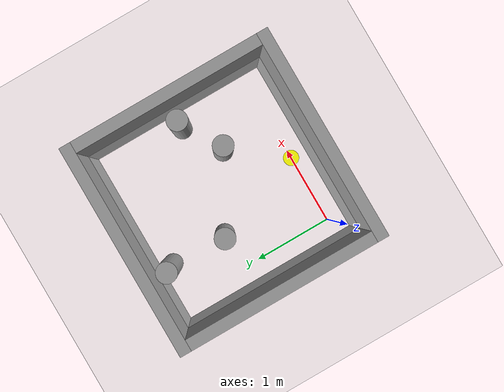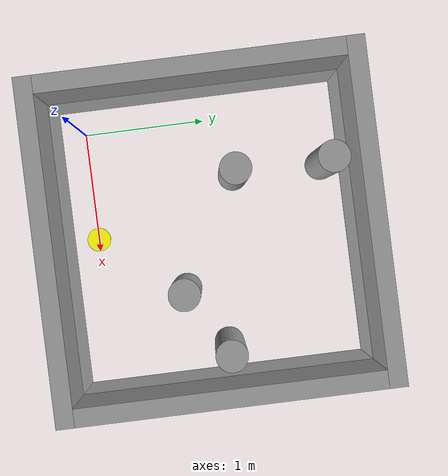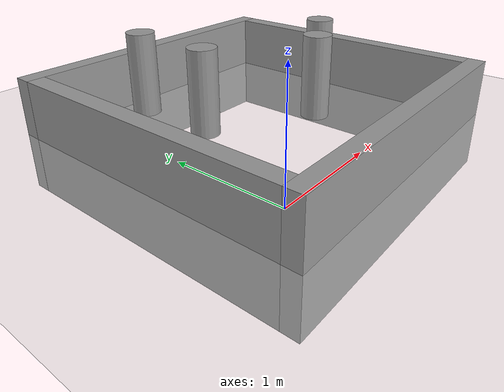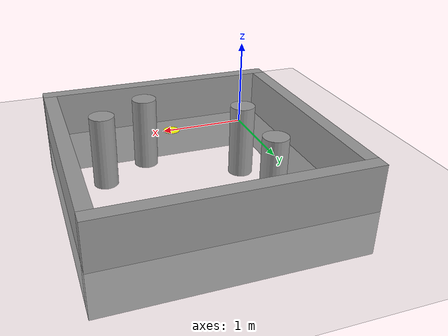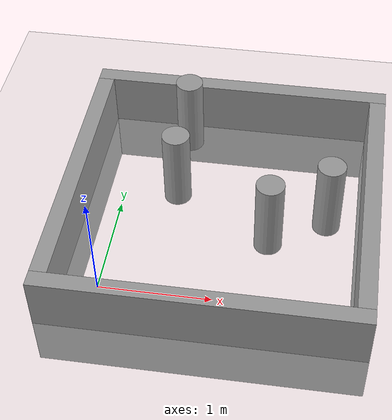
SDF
<sdf version="1.6">
 <world name="default">
  <light name="sun" type="directional">
   <pose>0 0 10 0 -0 0</pose>
   <diffuse>0.8 0.8 0.8 1</diffuse>
   <specular>0.1 0.1 0.1 1</specular>
   <attenuation>
    <range>1000</range>
    <constant>0.9</constant>
    <linear>0.01</linear>
    <quadratic>0.001</quadratic>
   </attenuation>
   <direction>-0.5 0.5 -1</direction>
  </light>
  <model name="ground_plane">
   <static>1</static>
   <link name="link">
    <collision name="collision">
     <geometry><plane><normal>0 0 1</normal><size>100 100</size></plane></geometry>
     <surface><friction><ode><mu>100</mu><mu2>50</mu2></ode></friction></surface>
    </collision>
    <visual name="visual">
     <cast_shadows>0</cast_shadows>
     <geometry><plane><normal>0 0 1</normal><size>100 100</size></plane></geometry>
     <material>
      <script><uri>file://media/materials/scripts/gazebo.material</uri><name>Gazebo/Grey</name></script>
     </material>
    </visual>
   </link>
  </model>
  <gravity>0 0 -9.8</gravity>
  <magnetic_field>6e-06 2.3e-05 -4.2e-05</magnetic_field>
  <atmosphere type="adiabatic"/>
  <physics name="default_physics" default="0" type="ode">
   <max_step_size>0.001</max_step_size>
   <real_time_factor>1</real_time_factor>
   <real_time_update_rate>1000</real_time_update_rate>
  </physics>
  <scene><ambient>0.4 0.4 0.4 1</ambient><background>0.7 0.7 0.7 1</background><shadows>1</shadows></scene>
  <spherical_coordinates>
   <surface_model>EARTH_WGS84</surface_model>
   <latitude_deg>0</latitude_deg>
   <longitude_deg>0</longitude_deg>
   <elevation>0</elevation>
   <heading_deg>0</heading_deg>
  </spherical_coordinates>
  <model name="rectangularWall_12_0">
   <link name="Wall_44">
    <pose>-1.875 -0.55 -0.75 0 -0 1.5708</pose>
    <inertial>
     <mass>1</mass>
     <inertia><ixx>1</ixx><ixy>0</ixy><ixz>0</ixz><iyy>1</iyy><iyz>0</iyz><izz>1</izz></inertia>
    </inertial>
    <visual name="Wall_44_Visual">
     <pose>0 0 0.75 0 -0 0</pose>
     <geometry><box><size>2.5 0.15 1</size></box></geometry>
     <material>
      <script><uri>file://media/materials/scripts/gazebo.material</uri><name>Gazebo/Grey</name></script>
      <ambient>1 1 1 1</ambient>
      <diffuse>0.7 0.7 0.7 1</diffuse>
      <specular>0.01 0.01 0.01 1</specular>
      <emissive>0 0 0 1</emissive>
      <shader type="vertex"><normal_map>__default__</normal_map></shader>
     </material>
    </visual>
    <collision name="Wall_44_Collision">
     <pose>0 0 0.75 0 -0 0</pose>
     <geometry><box><size>2.5 0.15 1</size></box></geometry>
     <surface>
      <friction>
       <ode><mu>1</mu><mu2>1</mu2><fdir1>0 0 0</fdir1><slip1>0</slip1><slip2>0</slip2></ode>
       <torsional>
        <coefficient>1</coefficient>
        <patch_radius>0</patch_radius>
        <surface_radius>0</surface_radius>
        <use_patch_radius>1</use_patch_radius>
        <ode><slip>0</slip></ode>
       </torsional>
      </friction>
      <bounce><restitution_coefficient>0</restitution_coefficient><threshold>1e+06</threshold></bounce>
      <contact>
       <collide_without_contact>0</collide_without_contact>
       <collide_without_contact_bitmask>1</collide_without_contact_bitmask>
       <collide_bitmask>1</collide_bitmask>
       <ode>
        <soft_cfm>0</soft_cfm>
        <soft_erp>0.2</soft_erp>
        <kp>1e+13</kp>
        <kd>1</kd>
        <max_vel>0.01</max_vel>
        <min_depth>0</min_depth>
       </ode>
       <bullet>
        <split_impulse>1</split_impulse>
        <split_impulse_penetration_threshold>-0.01</split_impulse_penetration_threshold>
        <soft_cfm>0</soft_cfm>
        <soft_erp>0.2</soft_erp>
        <kp>1e+13</kp>
        <kd>1</kd>
       </bullet>
      </contact>
     </surface>
    </collision>
   </link>
   <link name="Wall_44_clone">
    <pose>0.775 -0.55 -0.75 0 -0 1.5708</pose>
    <inertial>
     <mass>1</mass>
     <inertia><ixx>1</ixx><ixy>0</ixy><ixz>0</ixz><iyy>1</iyy><iyz>0</iyz><izz>1</izz></inertia>
    </inertial>
    <visual name="Wall_44_Visual">
     <pose>0 0 0.75 0 -0 0</pose>
     <geometry><box><size>2.5 0.15 1</size></box></geometry>
     <material>
      <script><uri>file://media/materials/scripts/gazebo.material</uri><name>Gazebo/Grey</name></script>
      <ambient>1 1 1 1</ambient>
      <diffuse>0.7 0.7 0.7 1</diffuse>
      <specular>0.01 0.01 0.01 1</specular>
      <emissive>0 0 0 1</emissive>
      <shader type="vertex"><normal_map>__default__</normal_map></shader>
     </material>
    </visual>
    <collision name="Wall_44_Collision">
     <pose>0 0 0.75 0 -0 0</pose>
     <geometry><box><size>2.5 0.15 1</size></box></geometry>
     <surface>
      <friction>
       <ode><mu>1</mu><mu2>1</mu2><fdir1>0 0 0</fdir1><slip1>0</slip1><slip2>0</slip2></ode>
       <torsional>
        <coefficient>1</coefficient>
        <patch_radius>0</patch_radius>
        <surface_radius>0</surface_radius>
        <use_patch_radius>1</use_patch_radius>
        <ode><slip>0</slip></ode>
       </torsional>
      </friction>
      <bounce><restitution_coefficient>0</restitution_coefficient><threshold>1e+06</threshold></bounce>
      <contact>
       <collide_without_contact>0</collide_without_contact>
       <collide_without_contact_bitmask>1</collide_without_contact_bitmask>
       <collide_bitmask>1</collide_bitmask>
       <ode>
        <soft_cfm>0</soft_cfm>
        <soft_erp>0.2</soft_erp>
        <kp>1e+13</kp>
        <kd>1</kd>
        <max_vel>0.01</max_vel>
        <min_depth>0</min_depth>
       </ode>
       <bullet>
        <split_impulse>1</split_impulse>
        <split_impulse_penetration_threshold>-0.01</split_impulse_penetration_threshold>
        <soft_cfm>0</soft_cfm>
        <soft_erp>0.2</soft_erp>
        <kp>1e+13</kp>
        <kd>1</kd>
       </bullet>
      </contact>
     </surface>
    </collision>
   </link>
   <link name="Wall_54">
    <pose>-0.55 0.775 -0.75 0 -0 3.14159</pose>
    <inertial>
     <mass>1</mass>
     <inertia><ixx>1</ixx><ixy>0</ixy><ixz>0</ixz><iyy>1</iyy><iyz>0</iyz><izz>1</izz></inertia>
    </inertial>
    <visual name="Wall_54_Visual">
     <pose>0 0 0.75 0 -0 0</pose>
     <geometry><box><size>2.8 0.15 1</size></box></geometry>
     <material>
      <script><uri>file://media/materials/scripts/gazebo.material</uri><name>Gazebo/Grey</name></script>
      <ambient>1 1 1 1</ambient>
      <diffuse>0.7 0.7 0.7 1</diffuse>
      <specular>0.01 0.01 0.01 1</specular>
      <emissive>0 0 0 1</emissive>
      <shader type="vertex"><normal_map>__default__</normal_map></shader>
     </material>
    </visual>
    <collision name="Wall_54_Collision">
     <pose>0 0 0.75 0 -0 0</pose>
     <geometry><box><size>2.8 0.15 1</size></box></geometry>
     <surface>
      <friction>
       <ode><mu>1</mu><mu2>1</mu2><fdir1>0 0 0</fdir1><slip1>0</slip1><slip2>0</slip2></ode>
       <torsional>
        <coefficient>1</coefficient>
        <patch_radius>0</patch_radius>
        <surface_radius>0</surface_radius>
        <use_patch_radius>1</use_patch_radius>
        <ode><slip>0</slip></ode>
       </torsional>
      </friction>
      <bounce><restitution_coefficient>0</restitution_coefficient><threshold>1e+06</threshold></bounce>
      <contact>
       <collide_without_contact>0</collide_without_contact>
       <collide_without_contact_bitmask>1</collide_without_contact_bitmask>
       <collide_bitmask>1</collide_bitmask>
       <ode>
        <soft_cfm>0</soft_cfm>
        <soft_erp>0.2</soft_erp>
        <kp>1e+13</kp>
        <kd>1</kd>
        <max_vel>0.01</max_vel>
        <min_depth>0</min_depth>
       </ode>
       <bullet>
        <split_impulse>1</split_impulse>
        <split_impulse_penetration_threshold>-0.01</split_impulse_penetration_threshold>
        <soft_cfm>0</soft_cfm>
        <soft_erp>0.2</soft_erp>
        <kp>1e+13</kp>
        <kd>1</kd>
       </bullet>
      </contact>
     </surface>
    </collision>
   </link>
   <link name="Wall_54_clone">
    <pose>-0.55 -1.875 -0.75 0 -0 3.14159</pose>
    <inertial>
     <mass>1</mass>
     <inertia><ixx>1</ixx><ixy>0</ixy><ixz>0</ixz><iyy>1</iyy><iyz>0</iyz><izz>1</izz></inertia>
    </inertial>
    <visual name="Wall_54_Visual">
     <pose>0 0 0.75 0 -0 0</pose>
     <geometry><box><size>2.8 0.15 1</size></box></geometry>
     <material>
      <script><uri>file://media/materials/scripts/gazebo.material</uri><name>Gazebo/Grey</name></script>
      <ambient>1 1 1 1</ambient>
      <diffuse>0.7 0.7 0.7 1</diffuse>
      <specular>0.01 0.01 0.01 1</specular>
      <emissive>0 0 0 1</emissive>
      <shader type="vertex"><normal_map>__default__</normal_map></shader>
     </material>
    </visual>
    <collision name="Wall_54_Collision">
     <pose>0 0 0.75 0 -0 0</pose>
     <geometry><box><size>2.8 0.15 1</size></box></geometry>
     <surface>
      <friction>
       <ode><mu>1</mu><mu2>1</mu2><fdir1>0 0 0</fdir1><slip1>0</slip1><slip2>0</slip2></ode>
       <torsional>
        <coefficient>1</coefficient>
        <patch_radius>0</patch_radius>
        <surface_radius>0</surface_radius>
        <use_patch_radius>1</use_patch_radius>
        <ode><slip>0</slip></ode>
       </torsional>
      </friction>
      <bounce><restitution_coefficient>0</restitution_coefficient><threshold>1e+06</threshold></bounce>
      <contact>
       <collide_without_contact>0</collide_without_contact>
       <collide_without_contact_bitmask>1</collide_without_contact_bitmask>
       <collide_bitmask>1</collide_bitmask>
       <ode>
        <soft_cfm>0</soft_cfm>
        <soft_erp>0.2</soft_erp>
        <kp>1e+13</kp>
        <kd>1</kd>
        <max_vel>0.01</max_vel>
        <min_depth>0</min_depth>
       </ode>
       <bullet>
        <split_impulse>1</split_impulse>
        <split_impulse_penetration_threshold>-0.01</split_impulse_penetration_threshold>
        <soft_cfm>0</soft_cfm>
        <soft_erp>0.2</soft_erp>
        <kp>1e+13</kp>
        <kd>1</kd>
       </bullet>
      </contact>
     </surface>
    </collision>
   </link>
   <static>1</static>
   <pose>1.5 1.5 0 0 -0 0</pose>
  </model>
  <model name="unit_cylinder_1">
   <link name="link">
    <pose>-1.605 0.135 -0.25 0 -0 0</pose>
    <inertial>
     <mass>1</mass>
     <inertia><ixx>0.145833</ixx><ixy>0</ixy><ixz>0</ixz><iyy>0.145833</iyy><iyz>0</iyz><izz>0.125</izz></inertia>
    </inertial>
    <visual name="visual">
     <geometry><cylinder><radius>0.125</radius><length>0.75</length></cylinder></geometry>
     <material>
      <script><name>Gazebo/Grey</name><uri>file://media/materials/scripts/gazebo.material</uri></script>
      <ambient>0.3 0.3 0.3 1</ambient>
      <diffuse>0.7 0.7 0.7 1</diffuse>
      <specular>0.01 0.01 0.01 1</specular>
      <emissive>0 0 0 1</emissive>
      <shader type="vertex"><normal_map>__default__</normal_map></shader>
     </material>
    </visual>
    <collision name="collision">
     <geometry><cylinder><radius>0.125</radius><length>0.75</length></cylinder></geometry>
     <surface>
      <friction>
       <ode><mu>1</mu><mu2>1</mu2><fdir1>0 0 0</fdir1><slip1>0</slip1><slip2>0</slip2></ode>
       <torsional>
        <coefficient>1</coefficient>
        <patch_radius>0</patch_radius>
        <surface_radius>0</surface_radius>
        <use_patch_radius>1</use_patch_radius>
        <ode><slip>0</slip></ode>
       </torsional>
      </friction>
      <bounce><restitution_coefficient>0</restitution_coefficient><threshold>1e+06</threshold></bounce>
      <contact>
       <collide_without_contact>0</collide_without_contact>
       <collide_without_contact_bitmask>1</collide_without_contact_bitmask>
       <collide_bitmask>1</collide_bitmask>
       <ode>
        <soft_cfm>0</soft_cfm>
        <soft_erp>0.2</soft_erp>
        <kp>1e+13</kp>
        <kd>1</kd>
        <max_vel>0.01</max_vel>
        <min_depth>0</min_depth>
       </ode>
       <bullet>
        <split_impulse>1</split_impulse>
        <split_impulse_penetration_threshold>-0.01</split_impulse_penetration_threshold>
        <soft_cfm>0</soft_cfm>
        <soft_erp>0.2</soft_erp>
        <kp>1e+13</kp>
        <kd>1</kd>
       </bullet>
      </contact>
     </surface>
    </collision>
   </link>
   <link name="link_clone">
    <pose>-1.605 0.885 -0.25 0 -0 9e-06</pose>
    <inertial>
     <mass>1</mass>
     <inertia><ixx>0.145833</ixx><ixy>0</ixy><ixz>0</ixz><iyy>0.145833</iyy><iyz>0</iyz><izz>0.125</izz></inertia>
    </inertial>
    <visual name="visual">
     <geometry><cylinder><radius>0.125</radius><length>0.75</length></cylinder></geometry>
     <material>
      <script><name>Gazebo/Grey</name><uri>file://media/materials/scripts/gazebo.material</uri></script>
      <ambient>0.3 0.3 0.3 1</ambient>
      <diffuse>0.7 0.7 0.7 1</diffuse>
      <specular>0.01 0.01 0.01 1</specular>
      <emissive>0 0 0 1</emissive>
      <shader type="vertex"><normal_map>__default__</normal_map></shader>
     </material>
    </visual>
    <collision name="collision">
     <geometry><cylinder><radius>0.125</radius><length>0.75</length></cylinder></geometry>
     <surface>
      <friction>
       <ode><mu>1</mu><mu2>1</mu2><fdir1>0 0 0</fdir1><slip1>0</slip1><slip2>0</slip2></ode>
       <torsional>
        <coefficient>1</coefficient>
        <patch_radius>0</patch_radius>
        <surface_radius>0</surface_radius>
        <use_patch_radius>1</use_patch_radius>
        <ode><slip>0</slip></ode>
       </torsional>
      </friction>
      <bounce><restitution_coefficient>0</restitution_coefficient><threshold>1e+06</threshold></bounce>
      <contact>
       <collide_without_contact>0</collide_without_contact>
       <collide_without_contact_bitmask>1</collide_without_contact_bitmask>
       <collide_bitmask>1</collide_bitmask>
       <ode>
        <soft_cfm>0</soft_cfm>
        <soft_erp>0.2</soft_erp>
        <kp>1e+13</kp>
        <kd>1</kd>
        <max_vel>0.01</max_vel>
        <min_depth>0</min_depth>
       </ode>
       <bullet>
        <split_impulse>1</split_impulse>
        <split_impulse_penetration_threshold>-0.01</split_impulse_penetration_threshold>
        <soft_cfm>0</soft_cfm>
        <soft_erp>0.2</soft_erp>
        <kp>1e+13</kp>
        <kd>1</kd>
       </bullet>
      </contact>
     </surface>
    </collision>
   </link>
   <link name="link_clone_0">
    <pose>-0.705 -0.365 -0.25 0 -0 9e-06</pose>
    <inertial>
     <mass>1</mass>
     <inertia><ixx>0.145833</ixx><ixy>0</ixy><ixz>0</ixz><iyy>0.145833</iyy><iyz>0</iyz><izz>0.125</izz></inertia>
    </inertial>
    <visual name="visual">
     <geometry><cylinder><radius>0.125</radius><length>0.75</length></cylinder></geometry>
     <material>
      <script><name>Gazebo/Grey</name><uri>file://media/materials/scripts/gazebo.material</uri></script>
      <ambient>0.3 0.3 0.3 1</ambient>
      <diffuse>0.7 0.7 0.7 1</diffuse>
      <specular>0.01 0.01 0.01 1</specular>
      <emissive>0 0 0 1</emissive>
      <shader type="vertex"><normal_map>__default__</normal_map></shader>
     </material>
    </visual>
    <collision name="collision">
     <geometry><cylinder><radius>0.125</radius><length>0.75</length></cylinder></geometry>
     <surface>
      <friction>
       <ode><mu>1</mu><mu2>1</mu2><fdir1>0 0 0</fdir1><slip1>0</slip1><slip2>0</slip2></ode>
       <torsional>
        <coefficient>1</coefficient>
        <patch_radius>0</patch_radius>
        <surface_radius>0</surface_radius>
        <use_patch_radius>1</use_patch_radius>
        <ode><slip>0</slip></ode>
       </torsional>
      </friction>
      <bounce><restitution_coefficient>0</restitution_coefficient><threshold>1e+06</threshold></bounce>
      <contact>
       <collide_without_contact>0</collide_without_contact>
       <collide_without_contact_bitmask>1</collide_without_contact_bitmask>
       <collide_bitmask>1</collide_bitmask>
       <ode>
        <soft_cfm>0</soft_cfm>
        <soft_erp>0.2</soft_erp>
        <kp>1e+13</kp>
        <kd>1</kd>
        <max_vel>0.01</max_vel>
        <min_depth>0</min_depth>
       </ode>
       <bullet>
        <split_impulse>1</split_impulse>
        <split_impulse_penetration_threshold>-0.01</split_impulse_penetration_threshold>
        <soft_cfm>0</soft_cfm>
        <soft_erp>0.2</soft_erp>
        <kp>1e+13</kp>
        <kd>1</kd>
       </bullet>
      </contact>
     </surface>
    </collision>
   </link>
   <link name="link_clone_1">
    <pose>-0.205 -0.065 -0.25 0 -0 9e-06</pose>
    <inertial>
     <mass>1</mass>
     <inertia><ixx>0.145833</ixx><ixy>0</ixy><ixz>0</ixz><iyy>0.145833</iyy><iyz>0</iyz><izz>0.125</izz></inertia>
    </inertial>
    <visual name="visual">
     <geometry><cylinder><radius>0.125</radius><length>0.75</length></cylinder></geometry>
     <material>
      <script><name>Gazebo/Grey</name><uri>file://media/materials/scripts/gazebo.material</uri></script>
      <ambient>0.3 0.3 0.3 1</ambient>
      <diffuse>0.7 0.7 0.7 1</diffuse>
      <specular>0.01 0.01 0.01 1</specular>
      <emissive>0 0 0 1</emissive>
      <shader type="vertex"><normal_map>__default__</normal_map></shader>
     </material>
    </visual>
    <collision name="collision">
     <geometry><cylinder><radius>0.125</radius><length>0.75</length></cylinder></geometry>
     <surface>
      <friction>
       <ode><mu>1</mu><mu2>1</mu2><fdir1>0 0 0</fdir1><slip1>0</slip1><slip2>0</slip2></ode>
       <torsional>
        <coefficient>1</coefficient>
        <patch_radius>0</patch_radius>
        <surface_radius>0</surface_radius>
        <use_patch_radius>1</use_patch_radius>
        <ode><slip>0</slip></ode>
       </torsional>
      </friction>
      <bounce><restitution_coefficient>0</restitution_coefficient><threshold>1e+06</threshold></bounce>
      <contact>
       <collide_without_contact>0</collide_without_contact>
       <collide_without_contact_bitmask>1</collide_without_contact_bitmask>
       <collide_bitmask>1</collide_bitmask>
       <ode>
        <soft_cfm>0</soft_cfm>
        <soft_erp>0.2</soft_erp>
        <kp>1e+13</kp>
        <kd>1</kd>
        <max_vel>0.01</max_vel>
        <min_depth>0</min_depth>
       </ode>
       <bullet>
        <split_impulse>1</split_impulse>
        <split_impulse_penetration_threshold>-0.01</split_impulse_penetration_threshold>
        <soft_cfm>0</soft_cfm>
        <soft_erp>0.2</soft_erp>
        <kp>1e+13</kp>
        <kd>1</kd>
       </bullet>
      </contact>
     </surface>
    </collision>
   </link>
   <link name="link_clone_2">
    <pose>-1.205 -1.065 -0.625 0 -0 9e-06</pose>
    <inertial>
     <mass>1</mass>
     <inertia><ixx>0.145833</ixx><ixy>0</ixy><ixz>0</ixz><iyy>0.145833</iyy><iyz>0</iyz><izz>0.125</izz></inertia>
    </inertial>
    <visual name="visual">
     <geometry><cylinder><radius>0.1</radius><length>0.001</length></cylinder></geometry>
     <material>
      <script><name>Gazebo/Grey</name><uri>file://media/materials/scripts/gazebo.material</uri></script>
      <ambient>1 1 0 1</ambient>
      <diffuse>0.7 0.7 0.7 1</diffuse>
      <specular>0.01 0.01 0.01 1</specular>
      <emissive>0 0 0 1</emissive>
      <shader type="vertex"><normal_map>__default__</normal_map></shader>
     </material>
    </visual>
    <collision name="collision">
     <geometry><cylinder><radius>0.1</radius><length>0.001</length></cylinder></geometry>
     <surface>
      <friction>
       <ode><mu>1</mu><mu2>1</mu2><fdir1>0 0 0</fdir1><slip1>0</slip1><slip2>0</slip2></ode>
       <torsional>
        <coefficient>1</coefficient>
        <patch_radius>0</patch_radius>
        <surface_radius>0</surface_radius>
        <use_patch_radius>1</use_patch_radius>
        <ode><slip>0</slip></ode>
       </torsional>
      </friction>
      <bounce><restitution_coefficient>0</restitution_coefficient><threshold>1e+06</threshold></bounce>
      <contact>
       <collide_without_contact>0</collide_without_contact>
       <collide_without_contact_bitmask>1</collide_without_contact_bitmask>
       <collide_bitmask>1</collide_bitmask>
       <ode>
        <soft_cfm>0</soft_cfm>
        <soft_erp>0.2</soft_erp>
        <kp>1e+13</kp>
        <kd>1</kd>
        <max_vel>0.01</max_vel>
        <min_depth>0</min_depth>
       </ode>
       <bullet>
        <split_impulse>1</split_impulse>
        <split_impulse_penetration_threshold>-0.01</split_impulse_penetration_threshold>
        <soft_cfm>0</soft_cfm>
        <soft_erp>0.2</soft_erp>
        <kp>1e+13</kp>
        <kd>1</kd>
       </bullet>
      </contact>
     </surface>
    </collision>
   </link>
   <static>0</static>
   <pose>2.1037 1.06319 0.624991 0 0 -9e-06</pose>
  </model>
 </world>
</sdf>
